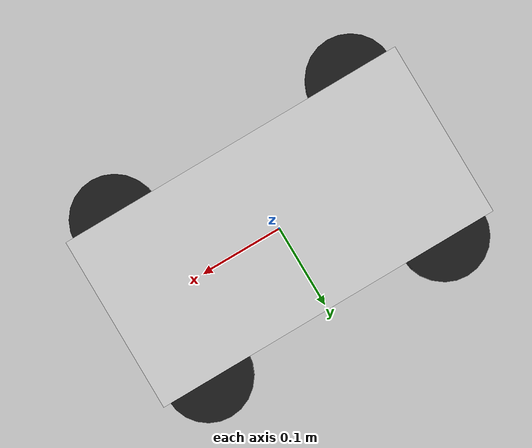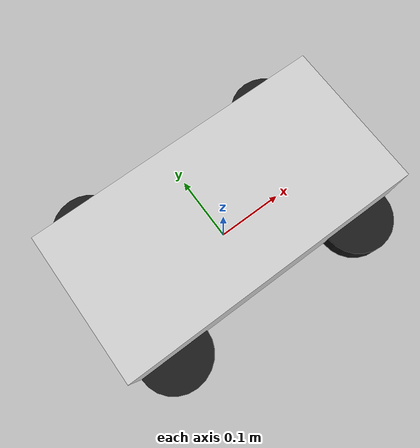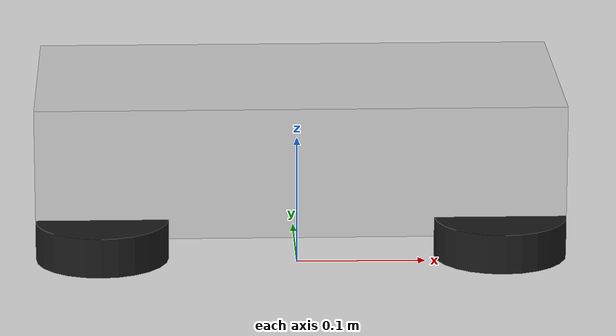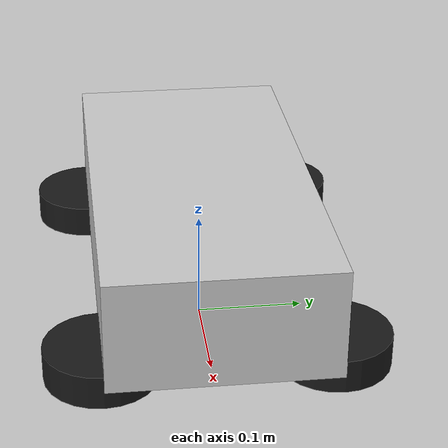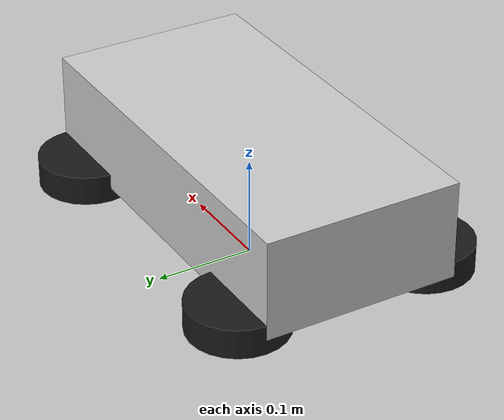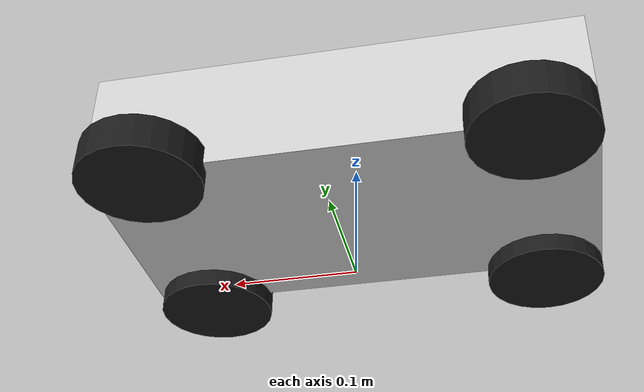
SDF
<?xml version="1.0" ?>
<sdf version="1.6">
  <model name="car">
    <!-- Base link -->
    <link name="chassis">
      <pose>0 0 0.1 0 0 0</pose>
      <inertial>
        <mass>20</mass>
        <inertia>
          <ixx>0.5</ixx>
          <iyy>0.5</iyy>
          <izz>0.5</izz>
        </inertia>
      </inertial>
      <collision name="collision">
        <geometry>
          <box>
            <size>0.4 0.2 0.1</size>
          </box>
        </geometry>
      </collision>
      <visual name="visual">
        <geometry>
          <box>
            <size>0.4 0.2 0.1</size>
          </box>
        </geometry>
        <material>
          <ambient>0.8 0.8 0.8 1</ambient>
          <diffuse>0.8 0.8 0.8 1</diffuse>
          <specular>0.1 0.1 0.1 1</specular>
        </material>
      </visual>
    </link>

    <!-- Front left wheel -->
    <link name="front_left_wheel">
      <pose>0.15 0.1 0.05 0 0 0</pose>
      <inertial>
        <mass>1</mass>
        <inertia>
          <ixx>0.01</ixx>
          <iyy>0.01</iyy>
          <izz>0.01</izz>
        </inertia>
      </inertial>
      <collision name="collision">
        <geometry>
          <cylinder>
            <radius>0.05</radius>
            <length>0.03</length>
          </cylinder>
        </geometry>
      </collision>
      <visual name="visual">
        <geometry>
          <cylinder>
            <radius>0.05</radius>
            <length>0.03</length>
          </cylinder>
        </geometry>
        <material>
          <ambient>0.1 0.1 0.1 1</ambient>
          <diffuse>0.1 0.1 0.1 1</diffuse>
          <specular>0.1 0.1 0.1 1</specular>
        </material>
      </visual>
    </link>

    <!-- Front right wheel -->
    <link name="front_right_wheel">
      <pose>0.15 -0.1 0.05 0 0 0</pose>
      <inertial>
        <mass>1</mass>
        <inertia>
          <ixx>0.01</ixx>
          <iyy>0.01</iyy>
          <izz>0.01</izz>
        </inertia>
      </inertial>
      <collision name="collision">
        <geometry>
          <cylinder>
            <radius>0.05</radius>
            <length>0.03</length>
          </cylinder>
        </geometry>
      </collision>
      <visual name="visual">
        <geometry>
          <cylinder>
            <radius>0.05</radius>
            <length>0.03</length>
          </cylinder>
        </geometry>
        <material>
          <ambient>0.1 0.1 0.1 1</ambient>
          <diffuse>0.1 0.1 0.1 1</diffuse>
          <specular>0.1 0.1 0.1 1</specular>
        </material>
      </visual>
    </link>

    <!-- Rear left wheel -->
    <link name="rear_left_wheel">
      <pose>-0.15 0.1 0.05 0 0 0</pose>
      <inertial>
        <mass>1</mass>
        <inertia>
          <ixx>0.01</ixx>
          <iyy>0.01</iyy>
          <izz>0.01</izz>
        </inertia>
      </inertial>
      <collision name="collision">
        <geometry>
          <cylinder>
            <radius>0.05</radius>
            <length>0.03</length>
          </cylinder>
        </geometry>
      </collision>
      <visual name="visual">
        <geometry>
          <cylinder>
            <radius>0.05</radius>
            <length>0.03</length>
          </cylinder>
        </geometry>
        <material>
          <ambient>0.1 0.1 0.1 1</ambient>
          <diffuse>0.1 0.1 0.1 1</diffuse>
          <specular>0.1 0.1 0.1 1</specular>
        </material>
      </visual>
    </link>

    <!-- Rear right wheel -->
    <link name="rear_right_wheel">
      <pose>-0.15 -0.1 0.05 0 0 0</pose>
      <inertial>
        <mass>1</mass>
        <inertia>
          <ixx>0.01</ixx>
          <iyy>0.01</iyy>
          <izz>0.01</izz>
        </inertia>
      </inertial>
      <collision name="collision">
        <geometry>
          <cylinder>
            <radius>0.05</radius>
            <length>0.03</length>
          </cylinder>
        </geometry>
      </collision>
      <visual name="visual">
        <geometry>
          <cylinder>
            <radius>0.05</radius>
            <length>0.03</length>
          </cylinder>
        </geometry>
        <material>
          <ambient>0.1 0.1 0.1 1</ambient>
          <diffuse>0.1 0.1 0.1 1</diffuse>
          <specular>0.1 0.1 0.1 1</specular>
        </material>
      </visual>
    </link>

    <!-- Joints for wheels -->
    <joint name="front_left_wheel_joint" type="continuous">
      <parent>chassis</parent>
      <child>front_left_wheel</child>
      <axis>
        <xyz>0 1 0</xyz>
        <limit>
          <effort>10</effort>
          <velocity>10</velocity>
        </limit>
      </axis>
    </joint>

    <joint name="front_right_wheel_joint" type="continuous">
      <parent>chassis</parent>
      <child>front_right_wheel</child>
      <axis>
        <xyz>0 1 0</xyz>
        <limit>
          <effort>10</effort>
          <velocity>10</velocity>
        </limit>
      </axis>
    </joint>

    <joint name="rear_left_wheel_joint" type="continuous">
      <parent>chassis</parent>
      <child>rear_left_wheel</child>
      <axis>
        <xyz>0 1 0</xyz>
        <limit>
          <effort>10</effort>
          <velocity>10</velocity>
        </limit>
      </axis>
    </joint>

    <joint name="rear_right_wheel_joint" type="continuous">
      <parent>chassis</parent>
      <child>rear_right_wheel</child>
      <axis>
        <xyz>0 1 0</xyz>
        <limit>
          <effort>10</effort>
          <velocity>10</velocity>
        </limit>
      </axis>
    </joint>

    <!-- Differential drive plugin -->
    <plugin name="differential_drive" filename="libgazebo_ros_diff_drive.so">
      <commandTopic>cmd_vel</commandTopic>
      <odometryTopic>odom</odometryTopic>
      <odometryFrame>odom</odometryFrame>
      <robotBaseFrame>chassis</robotBaseFrame>
      <publishWheelTF>true</publishWheelTF>
      <publishWheelJointState>true</publishWheelJointState>
      <wheelSeparation>0.2</wheelSeparation>
      <wheelDiameter>0.1</wheelDiameter>
      <wheelTorque>10</wheelTorque>
      <wheelAcceleration>1</wheelAcceleration>
      <updateRate>100</updateRate>
      <leftJoint>front_left_wheel_joint</leftJoint>
      <leftJoint>rear_left_wheel_joint</leftJoint>
      <rightJoint>front_right_wheel_joint</rightJoint>
      <rightJoint>rear_right_wheel_joint</rightJoint>
    </plugin>

    <!-- Camera sensor -->
    <link name="camera_link">
      <pose>0.2 0 0.15 0 0 0</pose>
      <inertial>
        <mass>0.1</mass>
        <inertia>
          <ixx>0.01</ixx>
          <iyy>0.01</iyy>
          <izz>0.01</izz>
        </inertia>
      </inertial>
      <sensor name="camera" type="camera">
        <camera>
          <horizontal_fov>1.047</horizontal_fov>
          <image>
            <width>640</width>
            <height>480</height>
          </image>
          <clip>
            <near>0.1</near>
            <far>100</far>
          </clip>
        </camera>
        <always_on>true</always_on>
        <update_rate>30</update_rate>
        <visualize>true</visualize>
        <plugin name="camera_controller" filename="libgazebo_ros_camera.so">
          <ros>
            <namespace>/car</namespace>
            <remapping>image_raw:=camera/image_raw</remapping>
          </ros>
          <camera_name>camera</camera_name>
          <frame_name>camera_link</frame_name>
          <hack_baseline>0.07</hack_baseline>
        </plugin>
      </sensor>
    </link>

    <!-- Joint for camera -->
    <joint name="camera_joint" type="fixed">
      <parent>chassis</parent>
      <child>camera_link</child>
    </joint>
  </model>
</sdf>
